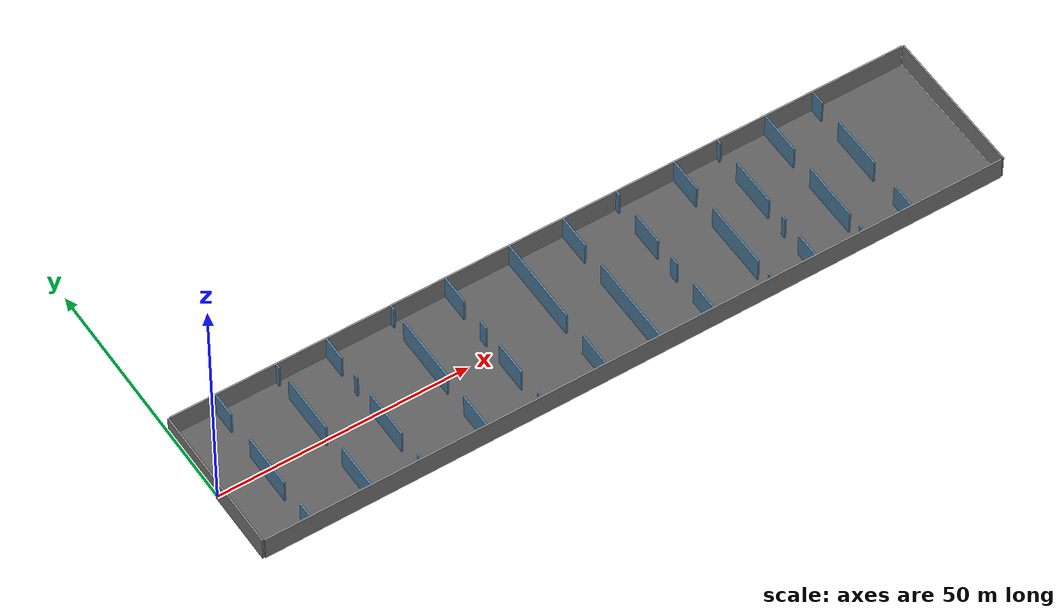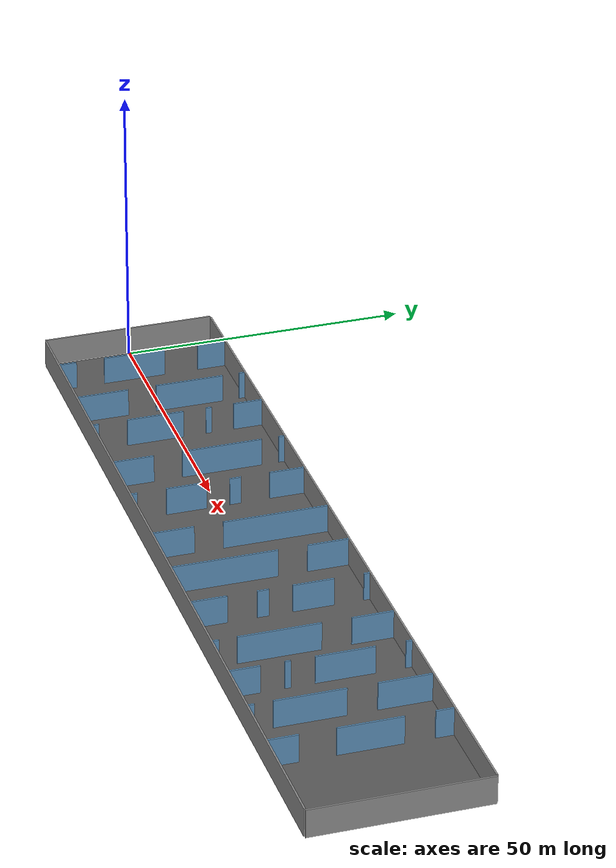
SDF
<?xml version="1.0" ?>
<sdf version="1.5">
  <world name="default">
    <include>
      <uri>model://sun</uri>
    </include>

    <scene>
      <ambient>0.45 0.45 0.45 1</ambient>
      <background>0.82 0.88 0.95 1</background>
      <shadows>true</shadows>
    </scene>

    <gui fullscreen="0">
      <camera name="user_camera">
        <pose>75 0 90 0 1.35 0</pose>
        <view_controller>fps</view_controller>
        <projection_type>perspective</projection_type>
      </camera>
    </gui>

    <physics name="default_physics" default="0" type="ode">
      <gravity>0 0 -9.8066</gravity>
      <ode>
        <solver>
          <type>quick</type>
          <iters>10</iters>
          <sor>1.3</sor>
          <use_dynamic_moi_rescaling>0</use_dynamic_moi_rescaling>
        </solver>
        <constraints>
          <cfm>0</cfm>
          <erp>0.2</erp>
          <contact_max_correcting_vel>100</contact_max_correcting_vel>
          <contact_surface_layer>0.001</contact_surface_layer>
        </constraints>
      </ode>
      <max_step_size>0.004</max_step_size>
      <real_time_factor>1</real_time_factor>
      <real_time_update_rate>250</real_time_update_rate>
      <magnetic_field>6.0e-6 2.3e-5 -4.2e-5</magnetic_field>
    </physics>

    <model name="corridor_floor">
      <static>true</static>
      <pose>75 0 0.01 0 0 0</pose>
      <link name="link">
        <collision name="collision">
          <geometry>
            <box>
              <size>150 30 0.02</size>
            </box>
          </geometry>
        </collision>
        <visual name="visual">
          <geometry>
            <box>
              <size>150 30 0.02</size>
            </box>
          </geometry>
          <material>
            <ambient>0.25 0.25 0.25 1</ambient>
            <diffuse>0.35 0.35 0.35 1</diffuse>
          </material>
        </visual>
      </link>
    </model>

    <model name="left_wall">
      <static>true</static>
      <pose>75 15.15 2.5 0 0 0</pose>
      <link name="link">
        <collision name="collision">
          <geometry>
            <box>
              <size>150 0.3 5</size>
            </box>
          </geometry>
        </collision>
        <visual name="visual">
          <geometry>
            <box>
              <size>150 0.3 5</size>
            </box>
          </geometry>
          <material>
            <ambient>0.45 0.45 0.45 1</ambient>
            <diffuse>0.55 0.55 0.55 1</diffuse>
          </material>
        </visual>
      </link>
    </model>

    <model name="right_wall">
      <static>true</static>
      <pose>75 -15.15 2.5 0 0 0</pose>
      <link name="link">
        <collision name="collision">
          <geometry>
            <box>
              <size>150 0.3 5</size>
            </box>
          </geometry>
        </collision>
        <visual name="visual">
          <geometry>
            <box>
              <size>150 0.3 5</size>
            </box>
          </geometry>
          <material>
            <ambient>0.45 0.45 0.45 1</ambient>
            <diffuse>0.55 0.55 0.55 1</diffuse>
          </material>
        </visual>
      </link>
    </model>

    <model name="start_wall">
      <static>true</static>
      <pose>-0.3 0 2.5 0 0 0</pose>
      <link name="link">
        <collision name="collision">
          <geometry>
            <box>
              <size>0.3 30.3 5</size>
            </box>
          </geometry>
        </collision>
        <visual name="visual">
          <geometry>
            <box>
              <size>0.3 30.3 5</size>
            </box>
          </geometry>
          <material>
            <ambient>0.45 0.45 0.45 1</ambient>
            <diffuse>0.55 0.55 0.55 1</diffuse>
          </material>
        </visual>
      </link>
    </model>

    <model name="end_wall">
      <static>true</static>
      <pose>150.3 0 2.5 0 0 0</pose>
      <link name="link">
        <collision name="collision">
          <geometry>
            <box>
              <size>0.3 30.3 5</size>
            </box>
          </geometry>
        </collision>
        <visual name="visual">
          <geometry>
            <box>
              <size>0.3 30.3 5</size>
            </box>
          </geometry>
          <material>
            <ambient>0.45 0.45 0.45 1</ambient>
            <diffuse>0.55 0.55 0.55 1</diffuse>
          </material>
        </visual>
      </link>
    </model>

    <!-- Row 01: mirror-paired openings y=[-12,-7], [4,10] -->
    <model name="slit_row_01_seg_01">
      <static>true</static>
      <pose>9.000 -13.500 2.5 0 0 0</pose>
      <link name="link">
        <collision name="collision">
          <geometry><box><size>0.3 3.000 5</size></box></geometry>
        </collision>
        <visual name="visual">
          <geometry><box><size>0.3 3.000 5</size></box></geometry>
          <material>
            <ambient>0.30 0.43 0.55 1</ambient>
            <diffuse>0.36 0.56 0.72 1</diffuse>
          </material>
        </visual>
      </link>
    </model>
    <model name="slit_row_01_seg_02">
      <static>true</static>
      <pose>9.000 -1.500 2.5 0 0 0</pose>
      <link name="link">
        <collision name="collision">
          <geometry><box><size>0.3 11.000 5</size></box></geometry>
        </collision>
        <visual name="visual">
          <geometry><box><size>0.3 11.000 5</size></box></geometry>
          <material>
            <ambient>0.30 0.43 0.55 1</ambient>
            <diffuse>0.36 0.56 0.72 1</diffuse>
          </material>
        </visual>
      </link>
    </model>
    <model name="slit_row_01_seg_03">
      <static>true</static>
      <pose>9.000 12.500 2.5 0 0 0</pose>
      <link name="link">
        <collision name="collision">
          <geometry><box><size>0.3 5.000 5</size></box></geometry>
        </collision>
        <visual name="visual">
          <geometry><box><size>0.3 5.000 5</size></box></geometry>
          <material>
            <ambient>0.30 0.43 0.55 1</ambient>
            <diffuse>0.36 0.56 0.72 1</diffuse>
          </material>
        </visual>
      </link>
    </model>
    <!-- Row 02: mirror-paired openings y=[-6,-1], [11,14] -->
    <model name="slit_row_02_seg_01">
      <static>true</static>
      <pose>21.000 -10.500 2.5 0 0 0</pose>
      <link name="link">
        <collision name="collision">
          <geometry><box><size>0.3 9.000 5</size></box></geometry>
        </collision>
        <visual name="visual">
          <geometry><box><size>0.3 9.000 5</size></box></geometry>
          <material>
            <ambient>0.30 0.43 0.55 1</ambient>
            <diffuse>0.36 0.56 0.72 1</diffuse>
          </material>
        </visual>
      </link>
    </model>
    <model name="slit_row_02_seg_02">
      <static>true</static>
      <pose>21.000 5.000 2.5 0 0 0</pose>
      <link name="link">
        <collision name="collision">
          <geometry><box><size>0.3 12.000 5</size></box></geometry>
        </collision>
        <visual name="visual">
          <geometry><box><size>0.3 12.000 5</size></box></geometry>
          <material>
            <ambient>0.30 0.43 0.55 1</ambient>
            <diffuse>0.36 0.56 0.72 1</diffuse>
          </material>
        </visual>
      </link>
    </model>
    <model name="slit_row_02_seg_03">
      <static>true</static>
      <pose>21.000 14.500 2.5 0 0 0</pose>
      <link name="link">
        <collision name="collision">
          <geometry><box><size>0.3 1.000 5</size></box></geometry>
        </collision>
        <visual name="visual">
          <geometry><box><size>0.3 1.000 5</size></box></geometry>
          <material>
            <ambient>0.30 0.43 0.55 1</ambient>
            <diffuse>0.36 0.56 0.72 1</diffuse>
          </material>
        </visual>
      </link>
    </model>
    <!-- Row 03: mirror-paired openings y=[-14,-9], [1,5], [6,10] -->
    <model name="slit_row_03_seg_01">
      <static>true</static>
      <pose>31.000 -14.500 2.5 0 0 0</pose>
      <link name="link">
        <collision name="collision">
          <geometry><box><size>0.3 1.000 5</size></box></geometry>
        </collision>
        <visual name="visual">
          <geometry><box><size>0.3 1.000 5</size></box></geometry>
          <material>
            <ambient>0.30 0.43 0.55 1</ambient>
            <diffuse>0.36 0.56 0.72 1</diffuse>
          </material>
        </visual>
      </link>
    </model>
    <model name="slit_row_03_seg_02">
      <static>true</static>
      <pose>31.000 -4.000 2.5 0 0 0</pose>
      <link name="link">
        <collision name="collision">
          <geometry><box><size>0.3 10.000 5</size></box></geometry>
        </collision>
        <visual name="visual">
          <geometry><box><size>0.3 10.000 5</size></box></geometry>
          <material>
            <ambient>0.30 0.43 0.55 1</ambient>
            <diffuse>0.36 0.56 0.72 1</diffuse>
          </material>
        </visual>
      </link>
    </model>
    <model name="slit_row_03_seg_03">
      <static>true</static>
      <pose>31.000 5.500 2.5 0 0 0</pose>
      <link name="link">
        <collision name="collision">
          <geometry><box><size>0.3 1.000 5</size></box></geometry>
        </collision>
        <visual name="visual">
          <geometry><box><size>0.3 1.000 5</size></box></geometry>
          <material>
            <ambient>0.30 0.43 0.55 1</ambient>
            <diffuse>0.36 0.56 0.72 1</diffuse>
          </material>
        </visual>
      </link>
    </model>
    <model name="slit_row_03_seg_04">
      <static>true</static>
      <pose>31.000 12.500 2.5 0 0 0</pose>
      <link name="link">
        <collision name="collision">
          <geometry><box><size>0.3 5.000 5</size></box></geometry>
        </collision>
        <visual name="visual">
          <geometry><box><size>0.3 5.000 5</size></box></geometry>
          <material>
            <ambient>0.30 0.43 0.55 1</ambient>
            <diffuse>0.36 0.56 0.72 1</diffuse>
          </material>
        </visual>
      </link>
    </model>
    <!-- Row 04: mirror-paired openings y=[-8,-3], [11,14] -->
    <model name="slit_row_04_seg_01">
      <static>true</static>
      <pose>44.000 -11.500 2.5 0 0 0</pose>
      <link name="link">
        <collision name="collision">
          <geometry><box><size>0.3 7.000 5</size></box></geometry>
        </collision>
        <visual name="visual">
          <geometry><box><size>0.3 7.000 5</size></box></geometry>
          <material>
            <ambient>0.30 0.43 0.55 1</ambient>
            <diffuse>0.36 0.56 0.72 1</diffuse>
          </material>
        </visual>
      </link>
    </model>
    <model name="slit_row_04_seg_02">
      <static>true</static>
      <pose>44.000 4.000 2.5 0 0 0</pose>
      <link name="link">
        <collision name="collision">
          <geometry><box><size>0.3 14.000 5</size></box></geometry>
        </collision>
        <visual name="visual">
          <geometry><box><size>0.3 14.000 5</size></box></geometry>
          <material>
            <ambient>0.30 0.43 0.55 1</ambient>
            <diffuse>0.36 0.56 0.72 1</diffuse>
          </material>
        </visual>
      </link>
    </model>
    <model name="slit_row_04_seg_03">
      <static>true</static>
      <pose>44.000 14.500 2.5 0 0 0</pose>
      <link name="link">
        <collision name="collision">
          <geometry><box><size>0.3 1.000 5</size></box></geometry>
        </collision>
        <visual name="visual">
          <geometry><box><size>0.3 1.000 5</size></box></geometry>
          <material>
            <ambient>0.30 0.43 0.55 1</ambient>
            <diffuse>0.36 0.56 0.72 1</diffuse>
          </material>
        </visual>
      </link>
    </model>
    <!-- Row 05: mirror-paired openings y=[-14,-9], [-2,2], [4,9] -->
    <model name="slit_row_05_seg_01">
      <static>true</static>
      <pose>55.000 -14.500 2.5 0 0 0</pose>
      <link name="link">
        <collision name="collision">
          <geometry><box><size>0.3 1.000 5</size></box></geometry>
        </collision>
        <visual name="visual">
          <geometry><box><size>0.3 1.000 5</size></box></geometry>
          <material>
            <ambient>0.30 0.43 0.55 1</ambient>
            <diffuse>0.36 0.56 0.72 1</diffuse>
          </material>
        </visual>
      </link>
    </model>
    <model name="slit_row_05_seg_02">
      <static>true</static>
      <pose>55.000 -5.500 2.5 0 0 0</pose>
      <link name="link">
        <collision name="collision">
          <geometry><box><size>0.3 7.000 5</size></box></geometry>
        </collision>
        <visual name="visual">
          <geometry><box><size>0.3 7.000 5</size></box></geometry>
          <material>
            <ambient>0.30 0.43 0.55 1</ambient>
            <diffuse>0.36 0.56 0.72 1</diffuse>
          </material>
        </visual>
      </link>
    </model>
    <model name="slit_row_05_seg_03">
      <static>true</static>
      <pose>55.000 3.000 2.5 0 0 0</pose>
      <link name="link">
        <collision name="collision">
          <geometry><box><size>0.3 2.000 5</size></box></geometry>
        </collision>
        <visual name="visual">
          <geometry><box><size>0.3 2.000 5</size></box></geometry>
          <material>
            <ambient>0.30 0.43 0.55 1</ambient>
            <diffuse>0.36 0.56 0.72 1</diffuse>
          </material>
        </visual>
      </link>
    </model>
    <model name="slit_row_05_seg_04">
      <static>true</static>
      <pose>55.000 12.000 2.5 0 0 0</pose>
      <link name="link">
        <collision name="collision">
          <geometry><box><size>0.3 6.000 5</size></box></geometry>
        </collision>
        <visual name="visual">
          <geometry><box><size>0.3 6.000 5</size></box></geometry>
          <material>
            <ambient>0.30 0.43 0.55 1</ambient>
            <diffuse>0.36 0.56 0.72 1</diffuse>
          </material>
        </visual>
      </link>
    </model>
    <!-- Row 06: mirror-paired openings y=[-8,-3] -->
    <model name="slit_row_06_seg_01">
      <static>true</static>
      <pose>68.000 -11.500 2.5 0 0 0</pose>
      <link name="link">
        <collision name="collision">
          <geometry><box><size>0.3 7.000 5</size></box></geometry>
        </collision>
        <visual name="visual">
          <geometry><box><size>0.3 7.000 5</size></box></geometry>
          <material>
            <ambient>0.30 0.43 0.55 1</ambient>
            <diffuse>0.36 0.56 0.72 1</diffuse>
          </material>
        </visual>
      </link>
    </model>
    <model name="slit_row_06_seg_02">
      <static>true</static>
      <pose>68.000 6.000 2.5 0 0 0</pose>
      <link name="link">
        <collision name="collision">
          <geometry><box><size>0.3 18.000 5</size></box></geometry>
        </collision>
        <visual name="visual">
          <geometry><box><size>0.3 18.000 5</size></box></geometry>
          <material>
            <ambient>0.30 0.43 0.55 1</ambient>
            <diffuse>0.36 0.56 0.72 1</diffuse>
          </material>
        </visual>
      </link>
    </model>
    <!-- Row 07: mirror-paired openings y=[3,8] -->
    <model name="slit_row_07_seg_01">
      <static>true</static>
      <pose>79.000 -6.000 2.5 0 0 0</pose>
      <link name="link">
        <collision name="collision">
          <geometry><box><size>0.3 18.000 5</size></box></geometry>
        </collision>
        <visual name="visual">
          <geometry><box><size>0.3 18.000 5</size></box></geometry>
          <material>
            <ambient>0.30 0.43 0.55 1</ambient>
            <diffuse>0.36 0.56 0.72 1</diffuse>
          </material>
        </visual>
      </link>
    </model>
    <model name="slit_row_07_seg_02">
      <static>true</static>
      <pose>79.000 11.500 2.5 0 0 0</pose>
      <link name="link">
        <collision name="collision">
          <geometry><box><size>0.3 7.000 5</size></box></geometry>
        </collision>
        <visual name="visual">
          <geometry><box><size>0.3 7.000 5</size></box></geometry>
          <material>
            <ambient>0.30 0.43 0.55 1</ambient>
            <diffuse>0.36 0.56 0.72 1</diffuse>
          </material>
        </visual>
      </link>
    </model>
    <!-- Row 08: mirror-paired openings y=[-9,-4], [-2,2], [9,14] -->
    <model name="slit_row_08_seg_01">
      <static>true</static>
      <pose>90.000 -12.000 2.5 0 0 0</pose>
      <link name="link">
        <collision name="collision">
          <geometry><box><size>0.3 6.000 5</size></box></geometry>
        </collision>
        <visual name="visual">
          <geometry><box><size>0.3 6.000 5</size></box></geometry>
          <material>
            <ambient>0.30 0.43 0.55 1</ambient>
            <diffuse>0.36 0.56 0.72 1</diffuse>
          </material>
        </visual>
      </link>
    </model>
    <model name="slit_row_08_seg_02">
      <static>true</static>
      <pose>90.000 -3.000 2.5 0 0 0</pose>
      <link name="link">
        <collision name="collision">
          <geometry><box><size>0.3 2.000 5</size></box></geometry>
        </collision>
        <visual name="visual">
          <geometry><box><size>0.3 2.000 5</size></box></geometry>
          <material>
            <ambient>0.30 0.43 0.55 1</ambient>
            <diffuse>0.36 0.56 0.72 1</diffuse>
          </material>
        </visual>
      </link>
    </model>
    <model name="slit_row_08_seg_03">
      <static>true</static>
      <pose>90.000 5.500 2.5 0 0 0</pose>
      <link name="link">
        <collision name="collision">
          <geometry><box><size>0.3 7.000 5</size></box></geometry>
        </collision>
        <visual name="visual">
          <geometry><box><size>0.3 7.000 5</size></box></geometry>
          <material>
            <ambient>0.30 0.43 0.55 1</ambient>
            <diffuse>0.36 0.56 0.72 1</diffuse>
          </material>
        </visual>
      </link>
    </model>
    <model name="slit_row_08_seg_04">
      <static>true</static>
      <pose>90.000 14.500 2.5 0 0 0</pose>
      <link name="link">
        <collision name="collision">
          <geometry><box><size>0.3 1.000 5</size></box></geometry>
        </collision>
        <visual name="visual">
          <geometry><box><size>0.3 1.000 5</size></box></geometry>
          <material>
            <ambient>0.30 0.43 0.55 1</ambient>
            <diffuse>0.36 0.56 0.72 1</diffuse>
          </material>
        </visual>
      </link>
    </model>
    <!-- Row 09: mirror-paired openings y=[-14,-11], [3,8] -->
    <model name="slit_row_09_seg_01">
      <static>true</static>
      <pose>102.000 -14.500 2.5 0 0 0</pose>
      <link name="link">
        <collision name="collision">
          <geometry><box><size>0.3 1.000 5</size></box></geometry>
        </collision>
        <visual name="visual">
          <geometry><box><size>0.3 1.000 5</size></box></geometry>
          <material>
            <ambient>0.30 0.43 0.55 1</ambient>
            <diffuse>0.36 0.56 0.72 1</diffuse>
          </material>
        </visual>
      </link>
    </model>
    <model name="slit_row_09_seg_02">
      <static>true</static>
      <pose>102.000 -4.000 2.5 0 0 0</pose>
      <link name="link">
        <collision name="collision">
          <geometry><box><size>0.3 14.000 5</size></box></geometry>
        </collision>
        <visual name="visual">
          <geometry><box><size>0.3 14.000 5</size></box></geometry>
          <material>
            <ambient>0.30 0.43 0.55 1</ambient>
            <diffuse>0.36 0.56 0.72 1</diffuse>
          </material>
        </visual>
      </link>
    </model>
    <model name="slit_row_09_seg_03">
      <static>true</static>
      <pose>102.000 11.500 2.5 0 0 0</pose>
      <link name="link">
        <collision name="collision">
          <geometry><box><size>0.3 7.000 5</size></box></geometry>
        </collision>
        <visual name="visual">
          <geometry><box><size>0.3 7.000 5</size></box></geometry>
          <material>
            <ambient>0.30 0.43 0.55 1</ambient>
            <diffuse>0.36 0.56 0.72 1</diffuse>
          </material>
        </visual>
      </link>
    </model>
    <!-- Row 10: mirror-paired openings y=[-10,-6], [-5,-1], [9,14] -->
    <model name="slit_row_10_seg_01">
      <static>true</static>
      <pose>111.000 -12.500 2.5 0 0 0</pose>
      <link name="link">
        <collision name="collision">
          <geometry><box><size>0.3 5.000 5</size></box></geometry>
        </collision>
        <visual name="visual">
          <geometry><box><size>0.3 5.000 5</size></box></geometry>
          <material>
            <ambient>0.30 0.43 0.55 1</ambient>
            <diffuse>0.36 0.56 0.72 1</diffuse>
          </material>
        </visual>
      </link>
    </model>
    <model name="slit_row_10_seg_02">
      <static>true</static>
      <pose>111.000 -5.500 2.5 0 0 0</pose>
      <link name="link">
        <collision name="collision">
          <geometry><box><size>0.3 1.000 5</size></box></geometry>
        </collision>
        <visual name="visual">
          <geometry><box><size>0.3 1.000 5</size></box></geometry>
          <material>
            <ambient>0.30 0.43 0.55 1</ambient>
            <diffuse>0.36 0.56 0.72 1</diffuse>
          </material>
        </visual>
      </link>
    </model>
    <model name="slit_row_10_seg_03">
      <static>true</static>
      <pose>111.000 4.000 2.5 0 0 0</pose>
      <link name="link">
        <collision name="collision">
          <geometry><box><size>0.3 10.000 5</size></box></geometry>
        </collision>
        <visual name="visual">
          <geometry><box><size>0.3 10.000 5</size></box></geometry>
          <material>
            <ambient>0.30 0.43 0.55 1</ambient>
            <diffuse>0.36 0.56 0.72 1</diffuse>
          </material>
        </visual>
      </link>
    </model>
    <model name="slit_row_10_seg_04">
      <static>true</static>
      <pose>111.000 14.500 2.5 0 0 0</pose>
      <link name="link">
        <collision name="collision">
          <geometry><box><size>0.3 1.000 5</size></box></geometry>
        </collision>
        <visual name="visual">
          <geometry><box><size>0.3 1.000 5</size></box></geometry>
          <material>
            <ambient>0.30 0.43 0.55 1</ambient>
            <diffuse>0.36 0.56 0.72 1</diffuse>
          </material>
        </visual>
      </link>
    </model>
    <!-- Row 11: mirror-paired openings y=[-14,-11], [1,6] -->
    <model name="slit_row_11_seg_01">
      <static>true</static>
      <pose>121.000 -14.500 2.5 0 0 0</pose>
      <link name="link">
        <collision name="collision">
          <geometry><box><size>0.3 1.000 5</size></box></geometry>
        </collision>
        <visual name="visual">
          <geometry><box><size>0.3 1.000 5</size></box></geometry>
          <material>
            <ambient>0.30 0.43 0.55 1</ambient>
            <diffuse>0.36 0.56 0.72 1</diffuse>
          </material>
        </visual>
      </link>
    </model>
    <model name="slit_row_11_seg_02">
      <static>true</static>
      <pose>121.000 -5.000 2.5 0 0 0</pose>
      <link name="link">
        <collision name="collision">
          <geometry><box><size>0.3 12.000 5</size></box></geometry>
        </collision>
        <visual name="visual">
          <geometry><box><size>0.3 12.000 5</size></box></geometry>
          <material>
            <ambient>0.30 0.43 0.55 1</ambient>
            <diffuse>0.36 0.56 0.72 1</diffuse>
          </material>
        </visual>
      </link>
    </model>
    <model name="slit_row_11_seg_03">
      <static>true</static>
      <pose>121.000 10.500 2.5 0 0 0</pose>
      <link name="link">
        <collision name="collision">
          <geometry><box><size>0.3 9.000 5</size></box></geometry>
        </collision>
        <visual name="visual">
          <geometry><box><size>0.3 9.000 5</size></box></geometry>
          <material>
            <ambient>0.30 0.43 0.55 1</ambient>
            <diffuse>0.36 0.56 0.72 1</diffuse>
          </material>
        </visual>
      </link>
    </model>
    <!-- Row 12: mirror-paired openings y=[-10,-4], [7,12] -->
    <model name="slit_row_12_seg_01">
      <static>true</static>
      <pose>131.000 -12.500 2.5 0 0 0</pose>
      <link name="link">
        <collision name="collision">
          <geometry><box><size>0.3 5.000 5</size></box></geometry>
        </collision>
        <visual name="visual">
          <geometry><box><size>0.3 5.000 5</size></box></geometry>
          <material>
            <ambient>0.30 0.43 0.55 1</ambient>
            <diffuse>0.36 0.56 0.72 1</diffuse>
          </material>
        </visual>
      </link>
    </model>
    <model name="slit_row_12_seg_02">
      <static>true</static>
      <pose>131.000 1.500 2.5 0 0 0</pose>
      <link name="link">
        <collision name="collision">
          <geometry><box><size>0.3 11.000 5</size></box></geometry>
        </collision>
        <visual name="visual">
          <geometry><box><size>0.3 11.000 5</size></box></geometry>
          <material>
            <ambient>0.30 0.43 0.55 1</ambient>
            <diffuse>0.36 0.56 0.72 1</diffuse>
          </material>
        </visual>
      </link>
    </model>
    <model name="slit_row_12_seg_03">
      <static>true</static>
      <pose>131.000 13.500 2.5 0 0 0</pose>
      <link name="link">
        <collision name="collision">
          <geometry><box><size>0.3 3.000 5</size></box></geometry>
        </collision>
        <visual name="visual">
          <geometry><box><size>0.3 3.000 5</size></box></geometry>
          <material>
            <ambient>0.30 0.43 0.55 1</ambient>
            <diffuse>0.36 0.56 0.72 1</diffuse>
          </material>
        </visual>
      </link>
    </model>
  </world>
</sdf>
